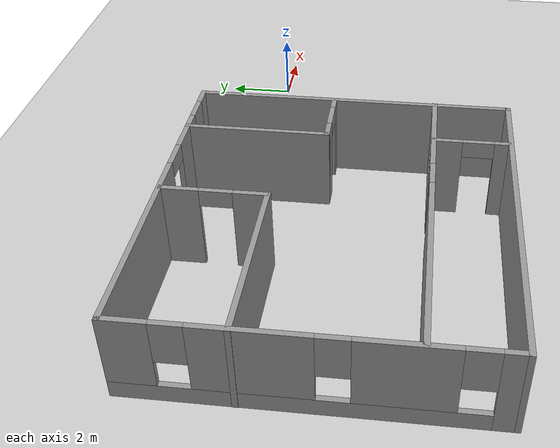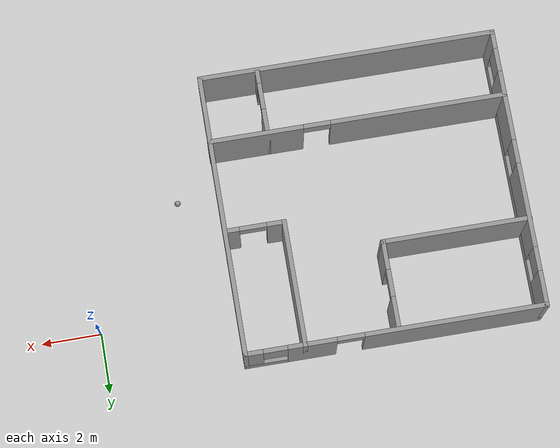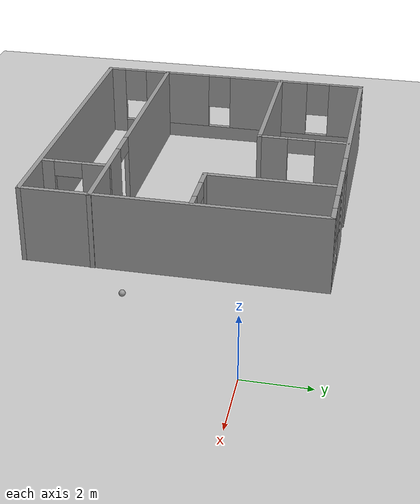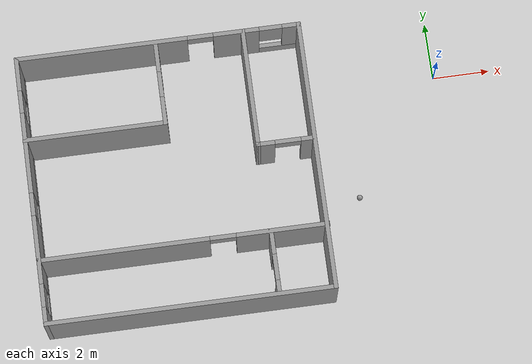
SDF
<sdf version="1.6">
 <world name="default">
  <light name="sun" type="directional">
   <pose>0 0 10 0 -0 0</pose>
   <diffuse>0.8 0.8 0.8 1</diffuse>
   <specular>0.2 0.2 0.2 1</specular>
   <attenuation>
    <range>1000</range>
    <constant>0.9</constant>
    <linear>0.01</linear>
    <quadratic>0.001</quadratic>
   </attenuation>
   <direction>-0.5 0.1 -0.9</direction>
  </light>
  <model name="ground_plane">
   <static>1</static>
   <link name="link">
    <collision name="collision">
     <geometry><plane><normal>0 0 1</normal><size>100 100</size></plane></geometry>
     <surface>
      <contact><collide_bitmask>65535</collide_bitmask></contact>
      <friction><ode><mu>100</mu><mu2>50</mu2></ode></friction>
     </surface>
    </collision>
    <visual name="visual">
     <cast_shadows>0</cast_shadows>
     <geometry><plane><normal>0 0 1</normal><size>100 100</size></plane></geometry>
     <material>
      <script><uri>file://media/materials/scripts/gazebo.material</uri><name>Gazebo/Grey</name></script>
     </material>
    </visual>
   </link>
  </model>
  <gravity>0 0 -9.8</gravity>
  <magnetic_field>6e-06 2.3e-05 -4.2e-05</magnetic_field>
  <atmosphere type="adiabatic"/>
  <physics name="default_physics" default="0" type="ode">
   <max_step_size>0.001</max_step_size>
   <real_time_factor>1</real_time_factor>
   <real_time_update_rate>1000</real_time_update_rate>
  </physics>
  <scene><ambient>0.4 0.4 0.4 1</ambient><background>0.7 0.7 0.7 1</background><shadows>1</shadows></scene>
  <spherical_coordinates>
   <surface_model>EARTH_WGS84</surface_model>
   <latitude_deg>0</latitude_deg>
   <longitude_deg>0</longitude_deg>
   <elevation>0</elevation>
   <heading_deg>0</heading_deg>
  </spherical_coordinates>
  <model name="mynewmodel">
   <pose>-9.52977 -2.81454 0 0 -0 0</pose>
   <link name="Wall_0">
    <pose>-0.005094 4.675 0 0 -0 0</pose>
    <visual name="Wall_0_Visual_0">
     <pose>-1.98374 0 1.25 0 -0 0</pose>
     <geometry><box><size>6.03251 0.15 2.5</size></box></geometry>
     <material>
      <script><uri>file://media/materials/scripts/gazebo.material</uri><name>Gazebo/Grey</name></script>
      <ambient>1 1 1 1</ambient>
     </material>
     <meta><layer>0</layer></meta>
    </visual>
    <collision name="Wall_0_Collision_0">
     <geometry><box><size>6.03251 0.15 2.5</size></box></geometry>
     <pose>-1.98374 0 1.25 0 -0 0</pose>
    </collision>
    <visual name="Wall_0_Visual_1">
     <pose>2.73744 0 1.25 0 -0 0</pose>
     <geometry><box><size>1.60985 0.15 2.5</size></box></geometry>
     <material>
      <script><uri>file://media/materials/scripts/gazebo.material</uri><name>Gazebo/Grey</name></script>
      <ambient>1 1 1 1</ambient>
     </material>
     <meta><layer>0</layer></meta>
    </visual>
    <collision name="Wall_0_Collision_1">
     <geometry><box><size>1.60985 0.15 2.5</size></box></geometry>
     <pose>2.73744 0 1.25 0 -0 0</pose>
    </collision>
    <visual name="Wall_0_Visual_2">
     <pose>4.27118 0 0.25 0 -0 0</pose>
     <geometry><box><size>1.45764 0.15 0.5</size></box></geometry>
     <material>
      <script><uri>file://media/materials/scripts/gazebo.material</uri><name>Gazebo/Grey</name></script>
      <ambient>1 1 1 1</ambient>
     </material>
     <meta><layer>0</layer></meta>
    </visual>
    <collision name="Wall_0_Collision_2">
     <geometry><box><size>1.45764 0.15 0.5</size></box></geometry>
     <pose>4.27118 0 0.25 0 -0 0</pose>
    </collision>
    <visual name="Wall_0_Visual_3">
     <pose>4.67118 0 1.5 0 -0 0</pose>
     <geometry><box><size>0.657638 0.15 2</size></box></geometry>
     <material>
      <script><uri>file://media/materials/scripts/gazebo.material</uri><name>Gazebo/Grey</name></script>
      <ambient>1 1 1 1</ambient>
     </material>
     <meta><layer>0</layer></meta>
    </visual>
    <collision name="Wall_0_Collision_3">
     <geometry><box><size>0.657638 0.15 2</size></box></geometry>
     <pose>4.67118 0 1.5 0 -0 0</pose>
    </collision>
    <visual name="Wall_0_Visual_4">
     <pose>3.94236 0 1.9 0 -0 0</pose>
     <geometry><box><size>0.8 0.15 1.2</size></box></geometry>
     <material>
      <script><uri>file://media/materials/scripts/gazebo.material</uri><name>Gazebo/Grey</name></script>
      <ambient>1 1 1 1</ambient>
     </material>
     <meta><layer>0</layer></meta>
    </visual>
    <collision name="Wall_0_Collision_4">
     <geometry><box><size>0.8 0.15 1.2</size></box></geometry>
     <pose>3.94236 0 1.9 0 -0 0</pose>
    </collision>
    <visual name="Wall_0_Visual_5">
     <pose>1.48251 0 2.25 0 -0 0</pose>
     <geometry><box><size>0.9 0.15 0.5</size></box></geometry>
     <material>
      <script><uri>file://media/materials/scripts/gazebo.material</uri><name>Gazebo/Grey</name></script>
      <ambient>1 1 1 1</ambient>
     </material>
     <meta><layer>0</layer></meta>
    </visual>
    <collision name="Wall_0_Collision_5">
     <geometry><box><size>0.9 0.15 0.5</size></box></geometry>
     <pose>1.48251 0 2.25 0 -0 0</pose>
    </collision>
   </link>
   <link name="Wall_1">
    <collision name="Wall_1_Collision">
     <geometry><box><size>9.5 0.15 2.5</size></box></geometry>
     <pose>0 0 1.25 0 -0 0</pose>
    </collision>
    <visual name="Wall_1_Visual">
     <pose>0 0 1.25 0 -0 0</pose>
     <geometry><box><size>9.5 0.15 2.5</size></box></geometry>
     <material>
      <script><uri>file://media/materials/scripts/gazebo.material</uri><name>Gazebo/Grey</name></script>
      <ambient>1 1 1 1</ambient>
     </material>
     <meta><layer>0</layer></meta>
    </visual>
    <pose>4.91991 0 0 0 0 -1.5708</pose>
   </link>
   <link name="Wall_11">
    <pose>0.014744 -2.48634 0 0 -0 0</pose>
    <visual name="Wall_11_Visual_0">
     <pose>-2.05317 0 1.25 0 -0 0</pose>
     <geometry><box><size>5.89365 0.15 2.5</size></box></geometry>
     <material>
      <script><uri>file://media/materials/scripts/gazebo.material</uri><name>Gazebo/Grey</name></script>
      <ambient>1 1 1 1</ambient>
     </material>
     <meta><layer>0</layer></meta>
    </visual>
    <collision name="Wall_11_Collision_0">
     <geometry><box><size>5.89365 0.15 2.5</size></box></geometry>
     <pose>-2.05317 0 1.25 0 -0 0</pose>
    </collision>
    <visual name="Wall_11_Visual_1">
     <pose>3.39683 0 1.25 0 -0 0</pose>
     <geometry><box><size>3.20635 0.15 2.5</size></box></geometry>
     <material>
      <script><uri>file://media/materials/scripts/gazebo.material</uri><name>Gazebo/Grey</name></script>
      <ambient>1 1 1 1</ambient>
     </material>
     <meta><layer>0</layer></meta>
    </visual>
    <collision name="Wall_11_Collision_1">
     <geometry><box><size>3.20635 0.15 2.5</size></box></geometry>
     <pose>3.39683 0 1.25 0 -0 0</pose>
    </collision>
    <visual name="Wall_11_Visual_2">
     <pose>1.34365 0 2.25 0 -0 0</pose>
     <geometry><box><size>0.9 0.15 0.5</size></box></geometry>
     <material>
      <script><uri>file://media/materials/scripts/gazebo.material</uri><name>Gazebo/Grey</name></script>
      <ambient>1 1 1 1</ambient>
     </material>
     <meta><layer>0</layer></meta>
    </visual>
    <collision name="Wall_11_Collision_2">
     <geometry><box><size>0.9 0.15 0.5</size></box></geometry>
     <pose>1.34365 0 2.25 0 -0 0</pose>
    </collision>
   </link>
   <link name="Wall_13">
    <pose>3.00491 -3.53634 0 0 0 -1.5708</pose>
    <visual name="Wall_13_Visual_0">
     <pose>-0.6777 0 1.25 0 -0 0</pose>
     <geometry><box><size>0.8946 0.15 2.5</size></box></geometry>
     <material>
      <script><uri>file://media/materials/scripts/gazebo.material</uri><name>Gazebo/Grey</name></script>
      <ambient>1 1 1 1</ambient>
     </material>
     <meta><layer>0</layer></meta>
    </visual>
    <collision name="Wall_13_Collision_0">
     <geometry><box><size>0.8946 0.15 2.5</size></box></geometry>
     <pose>-0.6777 0 1.25 0 -0 0</pose>
    </collision>
    <visual name="Wall_13_Visual_1">
     <pose>0.8973 0 1.25 0 -0 0</pose>
     <geometry><box><size>0.4554 0.15 2.5</size></box></geometry>
     <material>
      <script><uri>file://media/materials/scripts/gazebo.material</uri><name>Gazebo/Grey</name></script>
      <ambient>1 1 1 1</ambient>
     </material>
     <meta><layer>0</layer></meta>
    </visual>
    <collision name="Wall_13_Collision_1">
     <geometry><box><size>0.4554 0.15 2.5</size></box></geometry>
     <pose>0.8973 0 1.25 0 -0 0</pose>
    </collision>
    <visual name="Wall_13_Visual_2">
     <pose>0.2196 0 2.25 0 -0 0</pose>
     <geometry><box><size>0.9 0.15 0.5</size></box></geometry>
     <material>
      <script><uri>file://media/materials/scripts/gazebo.material</uri><name>Gazebo/Grey</name></script>
      <ambient>1 1 1 1</ambient>
     </material>
     <meta><layer>0</layer></meta>
    </visual>
    <collision name="Wall_13_Collision_2">
     <geometry><box><size>0.9 0.15 0.5</size></box></geometry>
     <pose>0.2196 0 2.25 0 -0 0</pose>
    </collision>
   </link>
   <link name="Wall_2">
    <collision name="Wall_2_Collision">
     <geometry><box><size>10 0.15 2.5</size></box></geometry>
     <pose>0 0 1.25 0 -0 0</pose>
    </collision>
    <visual name="Wall_2_Visual">
     <pose>0 0 1.25 0 -0 0</pose>
     <geometry><box><size>10 0.15 2.5</size></box></geometry>
     <material>
      <script><uri>file://media/materials/scripts/gazebo.material</uri><name>Gazebo/Grey</name></script>
      <ambient>1 1 1 1</ambient>
     </material>
     <meta><layer>0</layer></meta>
    </visual>
    <pose>-0.005094 -4.675 0 0 -0 3.14159</pose>
   </link>
   <link name="Wall_3">
    <pose>-4.93009 0 0 0 -0 1.5708</pose>
    <visual name="Wall_3_Visual_0">
     <pose>-4.42321 0 1.25 0 -0 0</pose>
     <geometry><box><size>0.653575 0.15 2.5</size></box></geometry>
     <material>
      <script><uri>file://media/materials/scripts/gazebo.material</uri><name>Gazebo/Grey</name></script>
      <ambient>1 1 1 1</ambient>
     </material>
     <meta><layer>0</layer></meta>
    </visual>
    <collision name="Wall_3_Collision_0">
     <geometry><box><size>0.653575 0.15 2.5</size></box></geometry>
     <pose>-4.42321 0 1.25 0 -0 0</pose>
    </collision>
    <visual name="Wall_3_Visual_1">
     <pose>0.326788 0 0.25 0 -0 0</pose>
     <geometry><box><size>8.84642 0.15 0.5</size></box></geometry>
     <material>
      <script><uri>file://media/materials/scripts/gazebo.material</uri><name>Gazebo/Grey</name></script>
      <ambient>1 1 1 1</ambient>
     </material>
     <meta><layer>0</layer></meta>
    </visual>
    <collision name="Wall_3_Collision_1">
     <geometry><box><size>8.84642 0.15 0.5</size></box></geometry>
     <pose>0.326788 0 0.25 0 -0 0</pose>
    </collision>
    <visual name="Wall_3_Visual_2">
     <pose>-2.09951 0 1.5 0 -0 0</pose>
     <geometry><box><size>2.39384 0.15 2</size></box></geometry>
     <material>
      <script><uri>file://media/materials/scripts/gazebo.material</uri><name>Gazebo/Grey</name></script>
      <ambient>1 1 1 1</ambient>
     </material>
     <meta><layer>0</layer></meta>
    </visual>
    <collision name="Wall_3_Collision_2">
     <geometry><box><size>2.39384 0.15 2</size></box></geometry>
     <pose>-2.09951 0 1.5 0 -0 0</pose>
    </collision>
    <visual name="Wall_3_Visual_3">
     <pose>1.32246 0 1.5 0 -0 0</pose>
     <geometry><box><size>2.8501 0.15 2</size></box></geometry>
     <material>
      <script><uri>file://media/materials/scripts/gazebo.material</uri><name>Gazebo/Grey</name></script>
      <ambient>1 1 1 1</ambient>
     </material>
     <meta><layer>0</layer></meta>
    </visual>
    <collision name="Wall_3_Collision_3">
     <geometry><box><size>2.8501 0.15 2</size></box></geometry>
     <pose>1.32246 0 1.5 0 -0 0</pose>
    </collision>
    <visual name="Wall_3_Visual_4">
     <pose>4.14876 0 1.5 0 -0 0</pose>
     <geometry><box><size>1.20249 0.15 2</size></box></geometry>
     <material>
      <script><uri>file://media/materials/scripts/gazebo.material</uri><name>Gazebo/Grey</name></script>
      <ambient>1 1 1 1</ambient>
     </material>
     <meta><layer>0</layer></meta>
    </visual>
    <collision name="Wall_3_Collision_4">
     <geometry><box><size>1.20249 0.15 2</size></box></geometry>
     <pose>4.14876 0 1.5 0 -0 0</pose>
    </collision>
    <visual name="Wall_3_Visual_5">
     <pose>-3.69643 0 1.9 0 -0 0</pose>
     <geometry><box><size>0.8 0.15 1.2</size></box></geometry>
     <material>
      <script><uri>file://media/materials/scripts/gazebo.material</uri><name>Gazebo/Grey</name></script>
      <ambient>1 1 1 1</ambient>
     </material>
     <meta><layer>0</layer></meta>
    </visual>
    <collision name="Wall_3_Collision_5">
     <geometry><box><size>0.8 0.15 1.2</size></box></geometry>
     <pose>-3.69643 0 1.9 0 -0 0</pose>
    </collision>
    <visual name="Wall_3_Visual_6">
     <pose>-0.502588 0 1.9 0 -0 0</pose>
     <geometry><box><size>0.8 0.15 1.2</size></box></geometry>
     <material>
      <script><uri>file://media/materials/scripts/gazebo.material</uri><name>Gazebo/Grey</name></script>
      <ambient>1 1 1 1</ambient>
     </material>
     <meta><layer>0</layer></meta>
    </visual>
    <collision name="Wall_3_Collision_6">
     <geometry><box><size>0.8 0.15 1.2</size></box></geometry>
     <pose>-0.502588 0 1.9 0 -0 0</pose>
    </collision>
    <visual name="Wall_3_Visual_7">
     <pose>3.14751 0 1.9 0 -0 0</pose>
     <geometry><box><size>0.8 0.15 1.2</size></box></geometry>
     <material>
      <script><uri>file://media/materials/scripts/gazebo.material</uri><name>Gazebo/Grey</name></script>
      <ambient>1 1 1 1</ambient>
     </material>
     <meta><layer>0</layer></meta>
    </visual>
    <collision name="Wall_3_Collision_7">
     <geometry><box><size>0.8 0.15 1.2</size></box></geometry>
     <pose>3.14751 0 1.9 0 -0 0</pose>
    </collision>
   </link>
   <link name="Wall_5">
    <pose>-0.089744 3.19049 0 0 0 -1.5708</pose>
    <visual name="Wall_5_Visual_0">
     <pose>-0.953512 0 1.25 0 -0 0</pose>
     <geometry><box><size>1.09298 0.15 2.5</size></box></geometry>
     <material>
      <script><uri>file://media/materials/scripts/gazebo.material</uri><name>Gazebo/Grey</name></script>
      <ambient>1 1 1 1</ambient>
     </material>
     <meta><layer>0</layer></meta>
    </visual>
    <collision name="Wall_5_Collision_0">
     <geometry><box><size>1.09298 0.15 2.5</size></box></geometry>
     <pose>-0.953512 0 1.25 0 -0 0</pose>
    </collision>
    <visual name="Wall_5_Visual_1">
     <pose>0.996488 0 1.25 0 -0 0</pose>
     <geometry><box><size>1.00703 0.15 2.5</size></box></geometry>
     <material>
      <script><uri>file://media/materials/scripts/gazebo.material</uri><name>Gazebo/Grey</name></script>
      <ambient>1 1 1 1</ambient>
     </material>
     <meta><layer>0</layer></meta>
    </visual>
    <collision name="Wall_5_Collision_1">
     <geometry><box><size>1.00703 0.15 2.5</size></box></geometry>
     <pose>0.996488 0 1.25 0 -0 0</pose>
    </collision>
    <visual name="Wall_5_Visual_2">
     <pose>0.042975 0 2.25 0 -0 0</pose>
     <geometry><box><size>0.9 0.15 0.5</size></box></geometry>
     <material>
      <script><uri>file://media/materials/scripts/gazebo.material</uri><name>Gazebo/Grey</name></script>
      <ambient>1 1 1 1</ambient>
     </material>
     <meta><layer>0</layer></meta>
    </visual>
    <collision name="Wall_5_Collision_2">
     <geometry><box><size>0.9 0.15 0.5</size></box></geometry>
     <pose>0.042975 0 2.25 0 -0 0</pose>
    </collision>
   </link>
   <link name="Wall_6">
    <collision name="Wall_6_Collision">
     <geometry><box><size>5 0.15 2.5</size></box></geometry>
     <pose>0 0 1.25 0 -0 0</pose>
    </collision>
    <visual name="Wall_6_Visual">
     <pose>0 0 1.25 0 -0 0</pose>
     <geometry><box><size>5 0.15 2.5</size></box></geometry>
     <material>
      <script><uri>file://media/materials/scripts/gazebo.material</uri><name>Gazebo/Grey</name></script>
      <ambient>1 1 1 1</ambient>
     </material>
     <meta><layer>0</layer></meta>
    </visual>
    <pose>-2.51474 1.76549 0 0 -0 3.14159</pose>
   </link>
   <link name="Wall_8">
    <collision name="Wall_8_Collision">
     <geometry><box><size>4.25 0.15 2.5</size></box></geometry>
     <pose>0 0 1.25 0 -0 0</pose>
    </collision>
    <visual name="Wall_8_Visual">
     <pose>0 0 1.25 0 -0 0</pose>
     <geometry><box><size>4.25 0.15 2.5</size></box></geometry>
     <material>
      <script><uri>file://media/materials/scripts/gazebo.material</uri><name>Gazebo/Grey</name></script>
      <ambient>1 1 1 1</ambient>
     </material>
     <meta><layer>0</layer></meta>
    </visual>
    <pose>2.96523 2.625 0 0 0 -1.5708</pose>
   </link>
   <link name="Wall_9">
    <pose>3.89023 0.575 0 0 -0 0</pose>
    <visual name="Wall_9_Visual_0">
     <pose>-0.671725 0 1.25 0 -0 0</pose>
     <geometry><box><size>0.65655 0.15 2.5</size></box></geometry>
     <material>
      <script><uri>file://media/materials/scripts/gazebo.material</uri><name>Gazebo/Grey</name></script>
      <ambient>1 1 1 1</ambient>
     </material>
     <meta><layer>0</layer></meta>
    </visual>
    <collision name="Wall_9_Collision_0">
     <geometry><box><size>0.65655 0.15 2.5</size></box></geometry>
     <pose>-0.671725 0 1.25 0 -0 0</pose>
    </collision>
    <visual name="Wall_9_Visual_1">
     <pose>0.778275 0 1.25 0 -0 0</pose>
     <geometry><box><size>0.44345 0.15 2.5</size></box></geometry>
     <material>
      <script><uri>file://media/materials/scripts/gazebo.material</uri><name>Gazebo/Grey</name></script>
      <ambient>1 1 1 1</ambient>
     </material>
     <meta><layer>0</layer></meta>
    </visual>
    <collision name="Wall_9_Collision_1">
     <geometry><box><size>0.44345 0.15 2.5</size></box></geometry>
     <pose>0.778275 0 1.25 0 -0 0</pose>
    </collision>
    <visual name="Wall_9_Visual_2">
     <pose>0.10655 0 2.25 0 -0 0</pose>
     <geometry><box><size>0.9 0.15 0.5</size></box></geometry>
     <material>
      <script><uri>file://media/materials/scripts/gazebo.material</uri><name>Gazebo/Grey</name></script>
      <ambient>1 1 1 1</ambient>
     </material>
     <meta><layer>0</layer></meta>
    </visual>
    <collision name="Wall_9_Collision_2">
     <geometry><box><size>0.9 0.15 0.5</size></box></geometry>
     <pose>0.10655 0 2.25 0 -0 0</pose>
    </collision>
   </link>
   <static>1</static>
  </model>
  <model name="mynewmodel1">
   <link name="link_0">
    <inertial>
     <mass>1</mass>
     <inertia><ixx>0.1</ixx><ixy>0</ixy><ixz>0</ixz><iyy>0.1</iyy><iyz>0</iyz><izz>0.1</izz></inertia>
    </inertial>
    <visual name="visual">
     <geometry><sphere><radius>0.1</radius></sphere></geometry>
     <material>
      <lighting>1</lighting>
      <script><uri>file://media/materials/scripts/gazebo.material</uri><name>Gazebo/Grey</name></script>
      <shader type="pixel"><normal_map>__default__</normal_map></shader>
      <ambient>1 1 1 1</ambient>
      <diffuse>1 1 1 1</diffuse>
      <specular>1 1 1 1</specular>
      <emissive>1 1 1 1</emissive>
     </material>
    </visual>
    <collision name="collision">
     <geometry><sphere><radius>0.1</radius></sphere></geometry>
     <surface>
      <friction>
       <ode><mu>1</mu><mu2>1</mu2><fdir1>0 0 0</fdir1><slip1>0</slip1><slip2>0</slip2></ode>
       <torsional>
        <coefficient>1</coefficient>
        <patch_radius>0</patch_radius>
        <surface_radius>0</surface_radius>
        <use_patch_radius>1</use_patch_radius>
        <ode><slip>0</slip></ode>
       </torsional>
      </friction>
      <bounce><restitution_coefficient>0</restitution_coefficient><threshold>1e+06</threshold></bounce>
      <contact>
       <collide_without_contact>0</collide_without_contact>
       <collide_without_contact_bitmask>1</collide_without_contact_bitmask>
       <collide_bitmask>1</collide_bitmask>
       <ode>
        <soft_cfm>0</soft_cfm>
        <soft_erp>0.2</soft_erp>
        <kp>1e+13</kp>
        <kd>1</kd>
        <max_vel>0.01</max_vel>
        <min_depth>0</min_depth>
       </ode>
       <bullet>
        <split_impulse>1</split_impulse>
        <split_impulse_penetration_threshold>-0.01</split_impulse_penetration_threshold>
        <soft_cfm>0</soft_cfm>
        <soft_erp>0.2</soft_erp>
        <kp>1e+13</kp>
        <kd>1</kd>
       </bullet>
      </contact>
     </surface>
    </collision>
   </link>
   <static>0</static>
   <pose>-3.2 -4 0.1 0 -0 0</pose>
  </model>
 </world>
</sdf>
